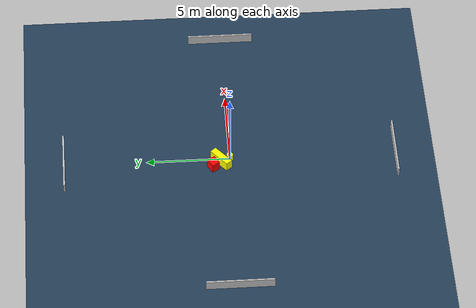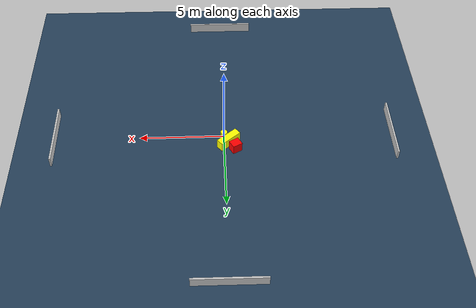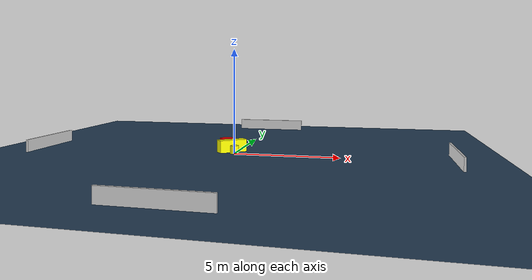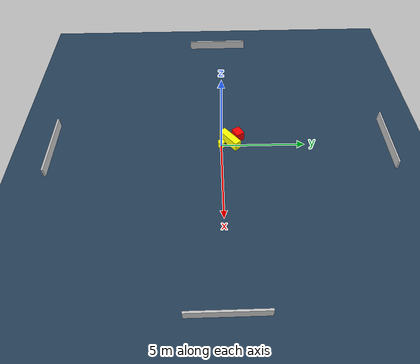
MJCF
<?xml version="1.0" ?>
<mujoco model="generated_environment">
  <option timestep="0.01" integrator="RK4" cone="elliptic"/>
  <default>
    <geom density="1"/>
  </default>
  <asset>
    <texture builtin="gradient" height="3072" name="skybox" rgb1="0.3 0.5 0.7" rgb2="0 0 0" type="skybox" width="512"/>
    <texture builtin="checker" height="300" name="groundplane" rgb1="0.2 0.3 0.4" rgb2="0.1 0.2 0.3" type="2d" width="300"/>
    <material name="groundplane" reflectance="0.2" texrepeat="5 5" texture="groundplane"/>
  </asset>
  <worldbody>
    <light dir="0 0 -1" directional="true" pos="0 0 1.5"/>
    <geom condim="3" friction="0.5 0.005 0.001" material="groundplane" name="floor" pos="0 0 0" size="0 0 0.05" type="plane"/>
    <body name="walls">
      <geom name="wall_1" condim="4" pos="-10.0 0.0 0.3" rgba="0.800000011920929 0.800000011920929 0.800000011920929 1.0" size="0.05 2.0 0.3" type="box"/>
      <geom name="wall_2" condim="4" pos="10.0 0.0 0.3" rgba="0.800000011920929 0.800000011920929 0.800000011920929 1.0" size="0.05 2.0 0.3" type="box"/>
      <geom name="wall_3" condim="4" pos="0.0 -10.0 0.3" rgba="0.800000011920929 0.800000011920929 0.800000011920929 1.0" size="2.0 0.05 0.3" type="box"/>
      <geom name="wall_4" condim="4" pos="0.0 10.0 0.3" rgba="0.800000011920929 0.800000011920929 0.800000011920929 1.0" size="2.0 0.05 0.3" type="box"/>
    </body>
    <body name="robot">
      <joint name="joint_x" type="slide" pos="0 0 0" axis="1 0 0"/>
      <joint name="joint_y" type="slide" pos="0 0 0" axis="0 1 0"/>
      <geom name="robot" type="cylinder" pos="0.0 0.0 0.2" size="0.2 0.2 0.0" mass="5.0" friction="1.0 0.005 0.0001" condim="4" rgba="1.0 1.0 0.0 1.0"/>
    </body>
    <body name="obstacle_1_movable">
      <geom name="obstacle_1_movable" condim="4" pos="-0.26079100705077946 0.5403765032836906 0.3" euler="0 0 309.7609792792365" friction="0.0 0.005 0.001" rgba="1.0 1.0 0.0 1.0" size="0.2168289998911606 0.7076344129783225 0.3" type="box" mass="0.1"/>
      <joint type="free"/>
    </body>
    <body name="obstacle_2_static">
      <geom name="obstacle_2_static" condim="4" pos="-0.6489218708242501 1.0262318590914286 0.3" euler="0 0 118.76993386154356" friction="0.0 0.005 0.001" rgba="1.0 0.0 0.0 1.0" size="0.25590576388416936 0.29858610540036534 0.3" type="box"/>
    </body>
  </worldbody>
  <actuator>
    <motor name="actuator_x" joint="joint_x" gear="1" ctrlrange="-1 1"/>
    <motor name="actuator_y" joint="joint_y" gear="1" ctrlrange="-1 1"/>
  </actuator>
</mujoco>
